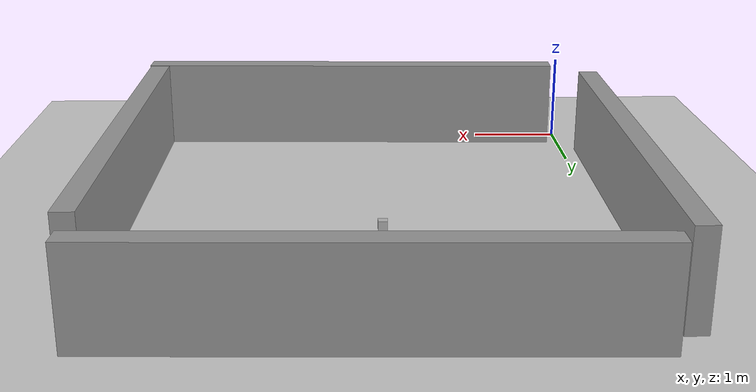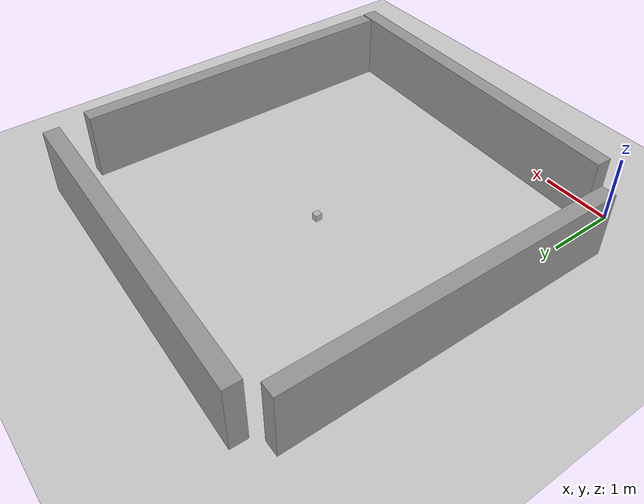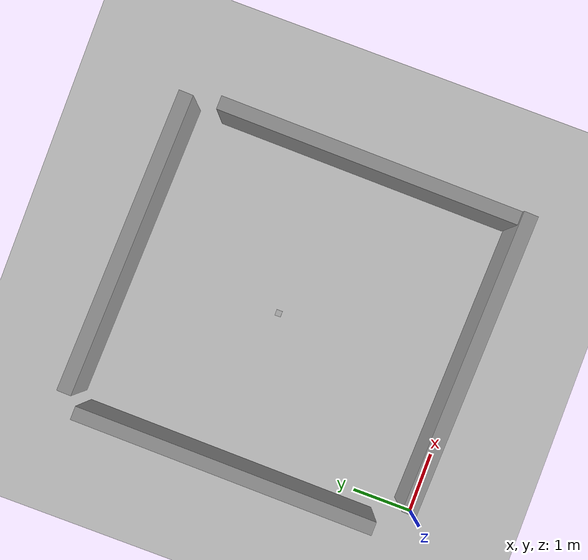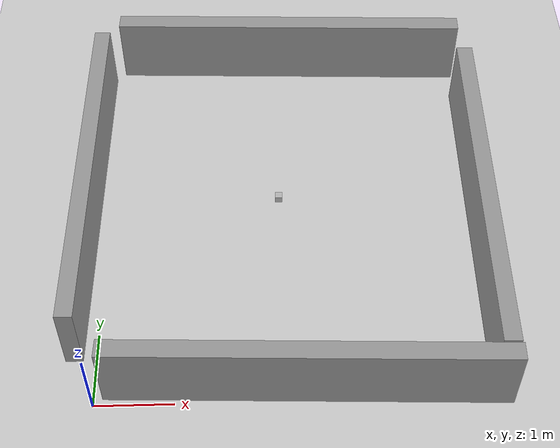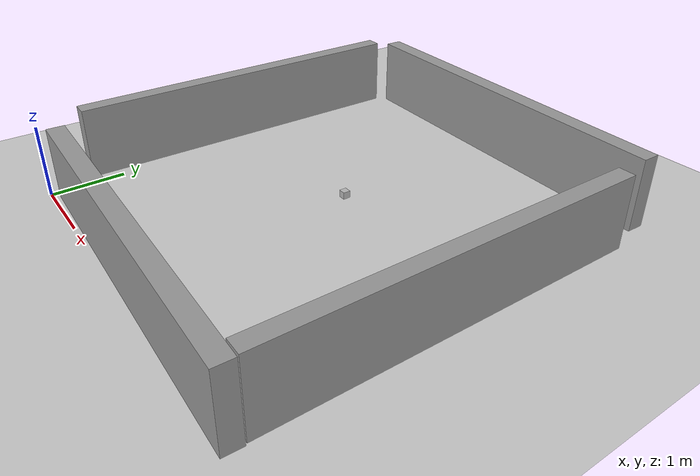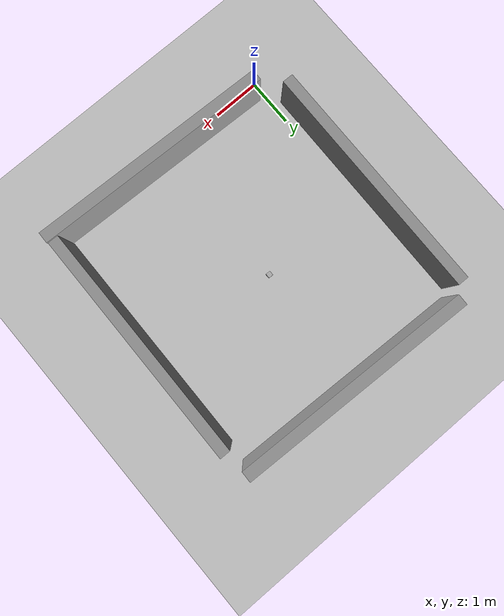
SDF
<sdf version="1.6">
 <world name="default">
  <light name="sun" type="directional">
   <pose>0 0 10 0 -0 0</pose>
   <diffuse>0.8 0.8 0.8 1</diffuse>
   <specular>0.2 0.2 0.2 1</specular>
   <attenuation>
    <range>1000</range>
    <constant>0.9</constant>
    <linear>0.01</linear>
    <quadratic>0.001</quadratic>
   </attenuation>
   <direction>-0.5 0.1 -0.9</direction>
  </light>
  <model name="ground_plane">
   <static>1</static>
   <link name="link">
    <collision name="collision">
     <geometry><plane><normal>0 0 1</normal><size>100 100</size></plane></geometry>
     <surface>
      <contact><collide_bitmask>65535</collide_bitmask></contact>
      <friction><ode><mu>100</mu><mu2>50</mu2></ode></friction>
     </surface>
    </collision>
    <visual name="visual">
     <cast_shadows>0</cast_shadows>
     <geometry><plane><normal>0 0 1</normal><size>100 100</size></plane></geometry>
     <material>
      <script><uri>file://media/materials/scripts/gazebo.material</uri><name>Gazebo/Grey</name></script>
     </material>
    </visual>
   </link>
  </model>
  <gravity>0 0 -9.8</gravity>
  <magnetic_field>6e-06 2.3e-05 -4.2e-05</magnetic_field>
  <atmosphere type="adiabatic"/>
  <physics name="default_physics" default="0" type="ode">
   <max_step_size>0.001</max_step_size>
   <real_time_factor>1</real_time_factor>
   <real_time_update_rate>1000</real_time_update_rate>
  </physics>
  <scene><ambient>0.4 0.4 0.4 1</ambient><background>0.7 0.7 0.7 1</background><shadows>1</shadows></scene>
  <spherical_coordinates>
   <surface_model>EARTH_WGS84</surface_model>
   <latitude_deg>0</latitude_deg>
   <longitude_deg>0</longitude_deg>
   <elevation>0</elevation>
   <heading_deg>0</heading_deg>
  </spherical_coordinates>
  <model name="unit_box">
   <pose>2.62613 0.12434 0.497851 2.7e-05 -0.000859 -0.031997</pose>
   <link name="link">
    <inertial>
     <mass>1</mass>
     <inertia>
      <ixx>0.166667</ixx>
      <ixy>0</ixy>
      <ixz>0</ixz>
      <iyy>0.166667</iyy>
      <iyz>0</iyz>
      <izz>0.166667</izz>
     </inertia>
    </inertial>
    <collision name="collision"><geometry><box><size>5.01969 0.238182 1</size></box></geometry></collision>
    <visual name="visual">
     <geometry><box><size>5.01969 0.238182 1</size></box></geometry>
     <material>
      <script><name>Gazebo/Grey</name><uri>file://media/materials/scripts/gazebo.material</uri></script>
     </material>
    </visual>
   </link>
  </model>
  <model name="unit_box_0">
   <pose>5.04222 2.68014 0.497903 -0.000842 -2.6e-05 -0.013181</pose>
   <link name="link">
    <inertial>
     <mass>1</mass>
     <inertia>
      <ixx>0.166667</ixx>
      <ixy>0</ixy>
      <ixz>0</ixz>
      <iyy>0.166667</iyy>
      <iyz>0</iyz>
      <izz>0.166667</izz>
     </inertia>
    </inertial>
    <collision name="collision"><geometry><box><size>0.222274 4.99257 1</size></box></geometry></collision>
    <visual name="visual">
     <geometry><box><size>0.222274 4.99257 1</size></box></geometry>
     <material>
      <script><name>Gazebo/Grey</name><uri>file://media/materials/scripts/gazebo.material</uri></script>
     </material>
    </visual>
   </link>
  </model>
  <model name="unit_box_clone">
   <pose>2.53109 5.78408 0.497851 -2.7e-05 0.000859 -0.031997</pose>
   <link name="link">
    <inertial>
     <mass>1</mass>
     <inertia>
      <ixx>0.166667</ixx>
      <ixy>0</ixy>
      <ixz>0</ixz>
      <iyy>0.166667</iyy>
      <iyz>0</iyz>
      <izz>0.166667</izz>
     </inertia>
    </inertial>
    <collision name="collision"><geometry><box><size>5.01969 0.238182 1</size></box></geometry></collision>
    <visual name="visual">
     <geometry><box><size>5.01969 0.238182 1</size></box></geometry>
     <material>
      <script><name>Gazebo/Grey</name><uri>file://media/materials/scripts/gazebo.material</uri></script>
     </material>
    </visual>
   </link>
  </model>
  <model name="unit_box_0_clone">
   <pose>-0.247626 3.13004 0.497903 -0.000842 -2.6e-05 -0.013181</pose>
   <link name="link">
    <inertial>
     <mass>1</mass>
     <inertia>
      <ixx>0.166667</ixx>
      <ixy>0</ixy>
      <ixz>0</ixz>
      <iyy>0.166667</iyy>
      <iyz>0</iyz>
      <izz>0.166667</izz>
     </inertia>
    </inertial>
    <collision name="collision"><geometry><box><size>0.222274 4.99257 1</size></box></geometry></collision>
    <visual name="visual">
     <geometry><box><size>0.222274 4.99257 1</size></box></geometry>
     <material>
      <script><name>Gazebo/Grey</name><uri>file://media/materials/scripts/gazebo.material</uri></script>
     </material>
    </visual>
   </link>
  </model>
  <model name="camera">
   <pose>2.32722 3.19511 0.05 0 -0 0</pose>
   <link name="link">
    <inertial>
     <mass>0.1</mass>
     <inertia>
      <ixx>0.000166667</ixx>
      <iyy>0.000166667</iyy>
      <izz>0.000166667</izz>
      <ixy>0</ixy>
      <ixz>0</ixz>
      <iyz>0</iyz>
     </inertia>
    </inertial>
    <collision name="collision"><geometry><box><size>0.1 0.1 0.1</size></box></geometry></collision>
    <visual name="visual"><geometry><box><size>0.1 0.1 0.1</size></box></geometry></visual>
    <sensor name="camera" type="camera">
     <camera name="__default__">
      <horizontal_fov>1.047</horizontal_fov>
      <image><width>320</width><height>240</height></image>
      <clip><near>0.1</near><far>100</far></clip>
     </camera>
     <always_on>1</always_on>
     <update_rate>30</update_rate>
     <visualize>1</visualize>
    </sensor>
   </link>
  </model>
 </world>
</sdf>
